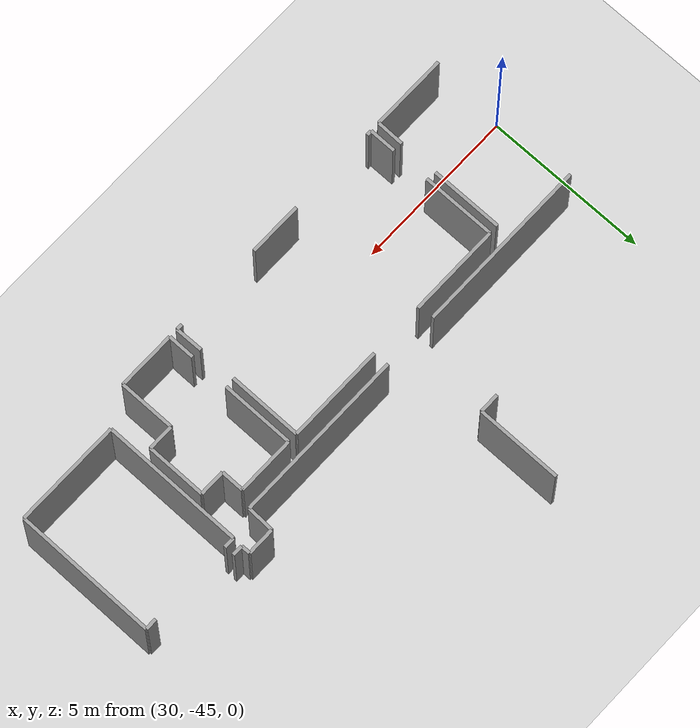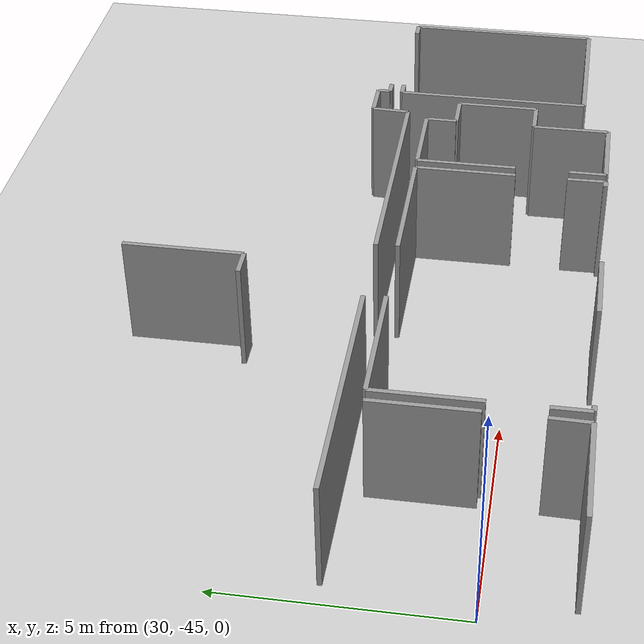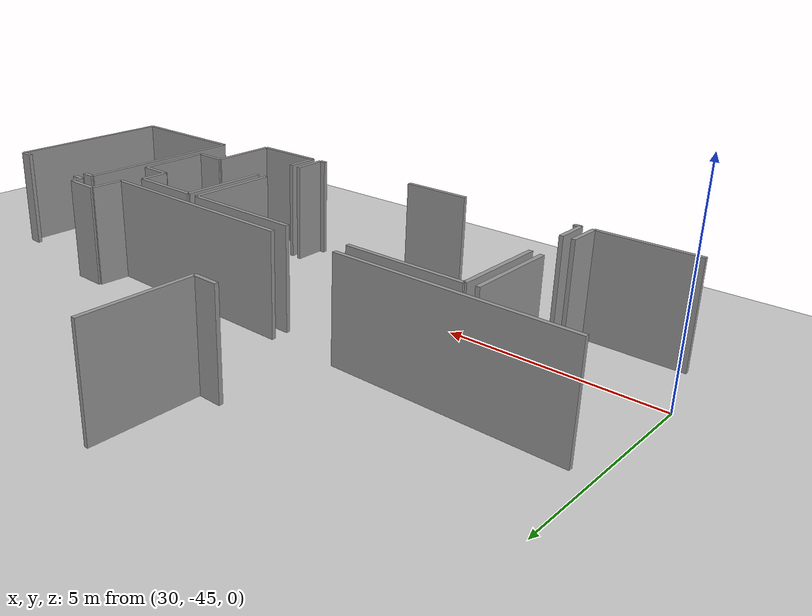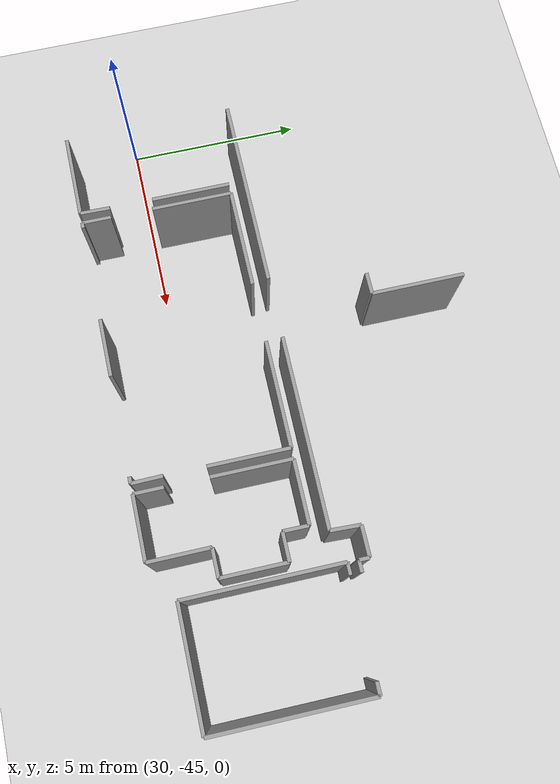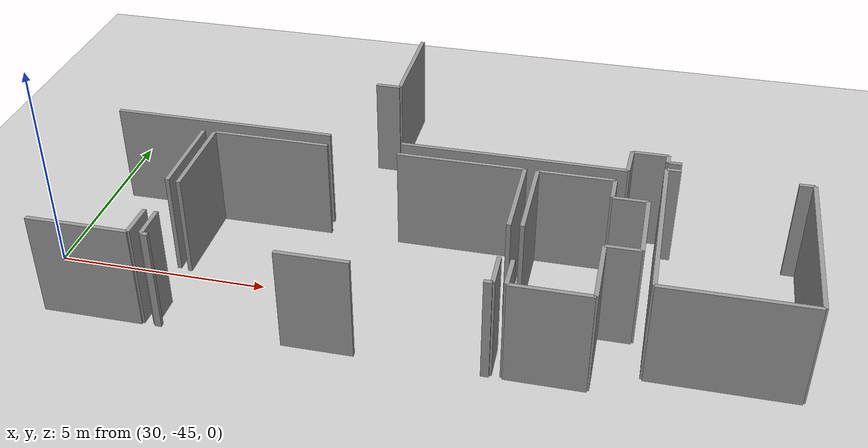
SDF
<sdf version="1.6">
 <world name="default">
  <model name="ground_plane">
   <static>1</static>
   <link name="link">
    <collision name="collision">
     <geometry><plane><normal>0 0 1</normal><size>100 100</size></plane></geometry>
     <surface><friction><ode><mu>100</mu><mu2>50</mu2></ode></friction></surface>
    </collision>
    <visual name="visual">
     <cast_shadows>0</cast_shadows>
     <geometry><plane><normal>0 0 1</normal><size>100 100</size></plane></geometry>
     <material>
      <script><uri>file://media/materials/scripts/gazebo.material</uri><name>Gazebo/Grey</name></script>
     </material>
    </visual>
   </link>
  </model>
  <model name="50025631">
   <static>1</static>
   <link name="Wall_301">
    <collision name="Wall_301_Collision">
     <geometry><box><size>5.28623954583 0.1 2.5</size></box></geometry>
     <pose>2.64311977291 0 1.25 0 0 0</pose>
    </collision>
    <visual name="Wall_301_Visual">
     <pose>2.64311977291 0 1.25 0 0 0</pose>
     <geometry><box><size>5.28623954583 0.1 2.5</size></box></geometry>
     <material>
      <script><uri>file://media/materials/scripts/gazebo.material</uri><name>Gazebo/Grey</name></script>
      <ambient>1 1 1 1</ambient>
     </material>
    </visual>
    <pose>98.7658836753 -90.636147149 0 0 0 3.14159265359</pose>
   </link>
   <link name="Wall_302">
    <collision name="Wall_302_Collision">
     <geometry><box><size>5.39711569602 0.1 2.5</size></box></geometry>
     <pose>2.69855784801 0 1.25 0 0 0</pose>
    </collision>
    <visual name="Wall_302_Visual">
     <pose>2.69855784801 0 1.25 0 0 0</pose>
     <geometry><box><size>5.39711569602 0.1 2.5</size></box></geometry>
     <material>
      <script><uri>file://media/materials/scripts/gazebo.material</uri><name>Gazebo/Grey</name></script>
      <ambient>1 1 1 1</ambient>
     </material>
    </visual>
    <pose>91.7538879681 -90.636147149 0 0 0 3.14159265359</pose>
   </link>
   <link name="Wall_307">
    <collision name="Wall_307_Collision">
     <geometry><box><size>0.601245927873 0.1 2.5</size></box></geometry>
     <pose>0.300622963937 0 1.25 0 0 0</pose>
    </collision>
    <visual name="Wall_307_Visual">
     <pose>0.300622963937 0 1.25 0 0 0</pose>
     <geometry><box><size>0.601245927873 0.1 2.5</size></box></geometry>
     <material>
      <script><uri>file://media/materials/scripts/gazebo.material</uri><name>Gazebo/Grey</name></script>
      <ambient>1 1 1 1</ambient>
     </material>
    </visual>
    <pose>92.1860890438 -87.9841369632 0 0 0 0.0</pose>
   </link>
   <link name="Wall_308">
    <collision name="Wall_308_Collision">
     <geometry><box><size>2.59714363732 0.1 2.5</size></box></geometry>
     <pose>1.29857181866 0 1.25 0 0 0</pose>
    </collision>
    <visual name="Wall_308_Visual">
     <pose>1.29857181866 0 1.25 0 0 0</pose>
     <geometry><box><size>2.59714363732 0.1 2.5</size></box></geometry>
     <material>
      <script><uri>file://media/materials/scripts/gazebo.material</uri><name>Gazebo/Grey</name></script>
      <ambient>1 1 1 1</ambient>
     </material>
    </visual>
    <pose>92.7873349717 -87.9841369632 0 0 0 1.57079632679</pose>
   </link>
   <link name="Wall_314">
    <collision name="Wall_314_Collision">
     <geometry><box><size>0.317387742661 0.1 2.5</size></box></geometry>
     <pose>0.15869387133 0 1.25 0 0 0</pose>
    </collision>
    <visual name="Wall_314_Visual">
     <pose>0.15869387133 0 1.25 0 0 0</pose>
     <geometry><box><size>0.317387742661 0.1 2.5</size></box></geometry>
     <material>
      <script><uri>file://media/materials/scripts/gazebo.material</uri><name>Gazebo/Grey</name></script>
      <ambient>1 1 1 1</ambient>
     </material>
    </visual>
    <pose>99.9523727877 -90.0900217815 0 0 0 3.14159265359</pose>
   </link>
   <link name="Wall_315">
    <collision name="Wall_315_Collision">
     <geometry><box><size>0.277126872543 0.1 2.5</size></box></geometry>
     <pose>0.138563436272 0 1.25 0 0 0</pose>
    </collision>
    <visual name="Wall_315_Visual">
     <pose>0.138563436272 0 1.25 0 0 0</pose>
     <geometry><box><size>0.277126872543 0.1 2.5</size></box></geometry>
     <material>
      <script><uri>file://media/materials/scripts/gazebo.material</uri><name>Gazebo/Grey</name></script>
      <ambient>1 1 1 1</ambient>
     </material>
    </visual>
    <pose>99.6349850451 -90.0900217815 0 0 0 1.57079632679</pose>
   </link>
   <link name="Wall_316">
    <collision name="Wall_316_Collision">
     <geometry><box><size>0.835063788713 0.1 2.5</size></box></geometry>
     <pose>0.417531894356 0 1.25 0 0 0</pose>
    </collision>
    <visual name="Wall_316_Visual">
     <pose>0.417531894356 0 1.25 0 0 0</pose>
     <geometry><box><size>0.835063788713 0.1 2.5</size></box></geometry>
     <material>
      <script><uri>file://media/materials/scripts/gazebo.material</uri><name>Gazebo/Grey</name></script>
      <ambient>1 1 1 1</ambient>
     </material>
    </visual>
    <pose>99.6349850451 -89.812894909 0 0 0 3.14159265359</pose>
   </link>
   <link name="Wall_317">
    <collision name="Wall_317_Collision">
     <geometry><box><size>0.823955585998 0.1 2.5</size></box></geometry>
     <pose>0.411977792999 0 1.25 0 0 0</pose>
    </collision>
    <visual name="Wall_317_Visual">
     <pose>0.411977792999 0 1.25 0 0 0</pose>
     <geometry><box><size>0.823955585998 0.1 2.5</size></box></geometry>
     <material>
      <script><uri>file://media/materials/scripts/gazebo.material</uri><name>Gazebo/Grey</name></script>
      <ambient>1 1 1 1</ambient>
     </material>
    </visual>
    <pose>98.7999212563 -89.812894909 0 0 0 -1.61211805578</pose>
   </link>
   <link name="Wall_318">
    <collision name="Wall_318_Collision">
     <geometry><box><size>3.25312910785 0.1 2.5</size></box></geometry>
     <pose>1.62656455392 0 1.25 0 0 0</pose>
    </collision>
    <visual name="Wall_318_Visual">
     <pose>1.62656455392 0 1.25 0 0 0</pose>
     <geometry><box><size>3.25312910785 0.1 2.5</size></box></geometry>
     <material>
      <script><uri>file://media/materials/scripts/gazebo.material</uri><name>Gazebo/Grey</name></script>
      <ambient>1 1 1 1</ambient>
     </material>
    </visual>
    <pose>102.876175598 -94.7177357388 0 0 0 3.14159265359</pose>
   </link>
   <link name="Wall_319">
    <collision name="Wall_319_Collision">
     <geometry><box><size>4.33344128835 0.1 2.5</size></box></geometry>
     <pose>2.16672064417 0 1.25 0 0 0</pose>
    </collision>
    <visual name="Wall_319_Visual">
     <pose>2.16672064417 0 1.25 0 0 0</pose>
     <geometry><box><size>4.33344128835 0.1 2.5</size></box></geometry>
     <material>
      <script><uri>file://media/materials/scripts/gazebo.material</uri><name>Gazebo/Grey</name></script>
      <ambient>1 1 1 1</ambient>
     </material>
    </visual>
    <pose>99.6230464905 -94.7177357388 0 0 0 1.57079632679</pose>
   </link>
   <link name="Wall_320">
    <collision name="Wall_320_Collision">
     <geometry><box><size>0.329199291307 0.1 2.5</size></box></geometry>
     <pose>0.164599645654 0 1.25 0 0 0</pose>
    </collision>
    <visual name="Wall_320_Visual">
     <pose>0.164599645654 0 1.25 0 0 0</pose>
     <geometry><box><size>0.329199291307 0.1 2.5</size></box></geometry>
     <material>
      <script><uri>file://media/materials/scripts/gazebo.material</uri><name>Gazebo/Grey</name></script>
      <ambient>1 1 1 1</ambient>
     </material>
    </visual>
    <pose>99.6230464905 -90.3842944505 0 0 0 0.0</pose>
   </link>
   <link name="Wall_321">
    <collision name="Wall_321_Collision">
     <geometry><box><size>0.34850418802 0.1 2.5</size></box></geometry>
     <pose>0.17425209401 0 1.25 0 0 0</pose>
    </collision>
    <visual name="Wall_321_Visual">
     <pose>0.17425209401 0 1.25 0 0 0</pose>
     <geometry><box><size>0.34850418802 0.1 2.5</size></box></geometry>
     <material>
      <script><uri>file://media/materials/scripts/gazebo.material</uri><name>Gazebo/Grey</name></script>
      <ambient>1 1 1 1</ambient>
     </material>
    </visual>
    <pose>102.534910747 -90.3842944505 0 0 0 0.0</pose>
   </link>
   <link name="Wall_322">
    <collision name="Wall_322_Collision">
     <geometry><box><size>4.33344733527 0.1 2.5</size></box></geometry>
     <pose>2.16672366763 0 1.25 0 0 0</pose>
    </collision>
    <visual name="Wall_322_Visual">
     <pose>2.16672366763 0 1.25 0 0 0</pose>
     <geometry><box><size>4.33344733527 0.1 2.5</size></box></geometry>
     <material>
      <script><uri>file://media/materials/scripts/gazebo.material</uri><name>Gazebo/Grey</name></script>
      <ambient>1 1 1 1</ambient>
     </material>
    </visual>
    <pose>102.883414935 -90.3842944505 0 0 0 -1.57246689968</pose>
   </link>
   <link name="Wall_352">
    <collision name="Wall_352_Collision">
     <geometry><box><size>0.182634483372 0.1 2.5</size></box></geometry>
     <pose>0.0913172416859 0 1.25 0 0 0</pose>
    </collision>
    <visual name="Wall_352_Visual">
     <pose>0.0913172416859 0 1.25 0 0 0</pose>
     <geometry><box><size>0.182634483372 0.1 2.5</size></box></geometry>
     <material>
      <script><uri>file://media/materials/scripts/gazebo.material</uri><name>Gazebo/Grey</name></script>
      <ambient>1 1 1 1</ambient>
     </material>
    </visual>
    <pose>96.493240111 -95.3205057375 0 0 0 3.14159265359</pose>
   </link>
   <link name="Wall_353">
    <collision name="Wall_353_Collision">
     <geometry><box><size>1.63761406717 0.1 2.5</size></box></geometry>
     <pose>0.818807033587 0 1.25 0 0 0</pose>
    </collision>
    <visual name="Wall_353_Visual">
     <pose>0.818807033587 0 1.25 0 0 0</pose>
     <geometry><box><size>1.63761406717 0.1 2.5</size></box></geometry>
     <material>
      <script><uri>file://media/materials/scripts/gazebo.material</uri><name>Gazebo/Grey</name></script>
      <ambient>1 1 1 1</ambient>
     </material>
    </visual>
    <pose>93.5555936573 -95.3205057375 0 0 0 3.14159265359</pose>
   </link>
   <link name="Wall_354">
    <collision name="Wall_354_Collision">
     <geometry><box><size>0.157614321185 0.1 2.5</size></box></geometry>
     <pose>0.0788071605926 0 1.25 0 0 0</pose>
    </collision>
    <visual name="Wall_354_Visual">
     <pose>0.0788071605926 0 1.25 0 0 0</pose>
     <geometry><box><size>0.157614321185 0.1 2.5</size></box></geometry>
     <material>
      <script><uri>file://media/materials/scripts/gazebo.material</uri><name>Gazebo/Grey</name></script>
      <ambient>1 1 1 1</ambient>
     </material>
    </visual>
    <pose>89.1629676198 -95.3205057375 0 0 0 3.14159265359</pose>
   </link>
   <link name="Wall_355">
    <collision name="Wall_355_Collision">
     <geometry><box><size>0.813345779911 0.1 2.5</size></box></geometry>
     <pose>0.406672889956 0 1.25 0 0 0</pose>
    </collision>
    <visual name="Wall_355_Visual">
     <pose>0.406672889956 0 1.25 0 0 0</pose>
     <geometry><box><size>0.813345779911 0.1 2.5</size></box></geometry>
     <material>
      <script><uri>file://media/materials/scripts/gazebo.material</uri><name>Gazebo/Grey</name></script>
      <ambient>1 1 1 1</ambient>
     </material>
    </visual>
    <pose>89.0053532987 -95.3205057375 0 0 0 1.57079632679</pose>
   </link>
   <link name="Wall_356">
    <collision name="Wall_356_Collision">
     <geometry><box><size>2.24381322512 0.1 2.5</size></box></geometry>
     <pose>1.12190661256 0 1.25 0 0 0</pose>
    </collision>
    <visual name="Wall_356_Visual">
     <pose>1.12190661256 0 1.25 0 0 0</pose>
     <geometry><box><size>2.24381322512 0.1 2.5</size></box></geometry>
     <material>
      <script><uri>file://media/materials/scripts/gazebo.material</uri><name>Gazebo/Grey</name></script>
      <ambient>1 1 1 1</ambient>
     </material>
    </visual>
    <pose>89.0053532987 -93.3380706534 0 0 0 1.57079632679</pose>
   </link>
   <link name="Wall_357">
    <collision name="Wall_357_Collision">
     <geometry><box><size>2.80949750116 0.1 2.5</size></box></geometry>
     <pose>1.40474875058 0 1.25 0 0 0</pose>
    </collision>
    <visual name="Wall_357_Visual">
     <pose>1.40474875058 0 1.25 0 0 0</pose>
     <geometry><box><size>2.80949750116 0.1 2.5</size></box></geometry>
     <material>
      <script><uri>file://media/materials/scripts/gazebo.material</uri><name>Gazebo/Grey</name></script>
      <ambient>1 1 1 1</ambient>
     </material>
    </visual>
    <pose>89.0053532987 -91.0942574283 0 0 0 0.0</pose>
   </link>
   <link name="Wall_358">
    <collision name="Wall_358_Collision">
     <geometry><box><size>2.98032043588 0.1 2.5</size></box></geometry>
     <pose>1.49016021794 0 1.25 0 0 0</pose>
    </collision>
    <visual name="Wall_358_Visual">
     <pose>1.49016021794 0 1.25 0 0 0</pose>
     <geometry><box><size>2.98032043588 0.1 2.5</size></box></geometry>
     <material>
      <script><uri>file://media/materials/scripts/gazebo.material</uri><name>Gazebo/Grey</name></script>
      <ambient>1 1 1 1</ambient>
     </material>
    </visual>
    <pose>93.4980599849 -91.0942574283 0 0 0 0.0</pose>
   </link>
   <link name="Wall_359">
    <collision name="Wall_359_Collision">
     <geometry><box><size>2.23670089476 0.1 2.5</size></box></geometry>
     <pose>1.11835044738 0 1.25 0 0 0</pose>
    </collision>
    <visual name="Wall_359_Visual">
     <pose>1.11835044738 0 1.25 0 0 0</pose>
     <geometry><box><size>2.23670089476 0.1 2.5</size></box></geometry>
     <material>
      <script><uri>file://media/materials/scripts/gazebo.material</uri><name>Gazebo/Grey</name></script>
      <ambient>1 1 1 1</ambient>
     </material>
    </visual>
    <pose>96.4783804208 -91.0942574283 0 0 0 -1.57079632679</pose>
   </link>
   <link name="Wall_360">
    <collision name="Wall_360_Collision">
     <geometry><box><size>0.847894599647 0.1 2.5</size></box></geometry>
     <pose>0.423947299824 0 1.25 0 0 0</pose>
    </collision>
    <visual name="Wall_360_Visual">
     <pose>0.423947299824 0 1.25 0 0 0</pose>
     <geometry><box><size>0.847894599647 0.1 2.5</size></box></geometry>
     <material>
      <script><uri>file://media/materials/scripts/gazebo.material</uri><name>Gazebo/Grey</name></script>
      <ambient>1 1 1 1</ambient>
     </material>
    </visual>
    <pose>96.4783804208 -94.4727413588 0 0 0 -1.55327003165</pose>
   </link>
   <link name="Wall_361">
    <collision name="Wall_361_Collision">
     <geometry><box><size>2.34262381488 0.1 2.5</size></box></geometry>
     <pose>1.17131190744 0 1.25 0 0 0</pose>
    </collision>
    <visual name="Wall_361_Visual">
     <pose>1.17131190744 0 1.25 0 0 0</pose>
     <geometry><box><size>2.34262381488 0.1 2.5</size></box></geometry>
     <material>
      <script><uri>file://media/materials/scripts/gazebo.material</uri><name>Gazebo/Grey</name></script>
      <ambient>1 1 1 1</ambient>
     </material>
    </visual>
    <pose>88.7053653642 -95.3252049558 0 0 0 3.14159265359</pose>
   </link>
   <link name="Wall_364">
    <collision name="Wall_364_Collision">
     <geometry><box><size>2.19631301874 0.1 2.5</size></box></geometry>
     <pose>1.09815650937 0 1.25 0 0 0</pose>
    </collision>
    <visual name="Wall_364_Visual">
     <pose>1.09815650937 0 1.25 0 0 0</pose>
     <geometry><box><size>2.19631301874 0.1 2.5</size></box></geometry>
     <material>
      <script><uri>file://media/materials/scripts/gazebo.material</uri><name>Gazebo/Grey</name></script>
      <ambient>1 1 1 1</ambient>
     </material>
    </visual>
    <pose>88.7235272078 -91.0926063516 0 0 0 -1.57079632679</pose>
   </link>
   <link name="Wall_365">
    <collision name="Wall_365_Collision">
     <geometry><box><size>0.834880339206 0.1 2.5</size></box></geometry>
     <pose>0.417440169603 0 1.25 0 0 0</pose>
    </collision>
    <visual name="Wall_365_Visual">
     <pose>0.417440169603 0 1.25 0 0 0</pose>
     <geometry><box><size>0.834880339206 0.1 2.5</size></box></geometry>
     <material>
      <script><uri>file://media/materials/scripts/gazebo.material</uri><name>Gazebo/Grey</name></script>
      <ambient>1 1 1 1</ambient>
     </material>
    </visual>
    <pose>88.7235272078 -94.4905221848 0 0 0 -1.5925518713</pose>
   </link>
   <link name="Wall_366">
    <collision name="Wall_366_Collision">
     <geometry><box><size>1.76804912588 0.1 2.5</size></box></geometry>
     <pose>0.884024562941 0 1.25 0 0 0</pose>
    </collision>
    <visual name="Wall_366_Visual">
     <pose>0.884024562941 0 1.25 0 0 0</pose>
     <geometry><box><size>1.76804912588 0.1 2.5</size></box></geometry>
     <material>
      <script><uri>file://media/materials/scripts/gazebo.material</uri><name>Gazebo/Grey</name></script>
      <ambient>1 1 1 1</ambient>
     </material>
    </visual>
    <pose>98.5368920386 -95.3188546608 0 0 0 3.14159265359</pose>
   </link>
   <link name="Wall_367">
    <collision name="Wall_367_Collision">
     <geometry><box><size>0.814488833006 0.1 2.5</size></box></geometry>
     <pose>0.407244416503 0 1.25 0 0 0</pose>
    </collision>
    <visual name="Wall_367_Visual">
     <pose>0.407244416503 0 1.25 0 0 0</pose>
     <geometry><box><size>0.814488833006 0.1 2.5</size></box></geometry>
     <material>
      <script><uri>file://media/materials/scripts/gazebo.material</uri><name>Gazebo/Grey</name></script>
      <ambient>1 1 1 1</ambient>
     </material>
    </visual>
    <pose>96.7688429128 -95.3188546608 0 0 0 1.57079632679</pose>
   </link>
   <link name="Wall_368">
    <collision name="Wall_368_Collision">
     <geometry><box><size>2.20748953789 0.1 2.5</size></box></geometry>
     <pose>1.10374476894 0 1.25 0 0 0</pose>
    </collision>
    <visual name="Wall_368_Visual">
     <pose>1.10374476894 0 1.25 0 0 0</pose>
     <geometry><box><size>2.20748953789 0.1 2.5</size></box></geometry>
     <material>
      <script><uri>file://media/materials/scripts/gazebo.material</uri><name>Gazebo/Grey</name></script>
      <ambient>1 1 1 1</ambient>
     </material>
    </visual>
    <pose>96.7688429128 -93.3089863024 0 0 0 1.57079632679</pose>
   </link>
   <link name="Wall_369">
    <collision name="Wall_369_Collision">
     <geometry><box><size>1.75763464213 0.1 2.5</size></box></geometry>
     <pose>0.878817321065 0 1.25 0 0 0</pose>
    </collision>
    <visual name="Wall_369_Visual">
     <pose>0.878817321065 0 1.25 0 0 0</pose>
     <geometry><box><size>1.75763464213 0.1 2.5</size></box></geometry>
     <material>
      <script><uri>file://media/materials/scripts/gazebo.material</uri><name>Gazebo/Grey</name></script>
      <ambient>1 1 1 1</ambient>
     </material>
    </visual>
    <pose>96.7688429128 -91.1014967645 0 0 0 0.0</pose>
   </link>
   <link name="Wall_370">
    <collision name="Wall_370_Collision">
     <geometry><box><size>0.697135381938 0.1 2.5</size></box></geometry>
     <pose>0.348567690969 0 1.25 0 0 0</pose>
    </collision>
    <visual name="Wall_370_Visual">
     <pose>0.348567690969 0 1.25 0 0 0</pose>
     <geometry><box><size>0.697135381938 0.1 2.5</size></box></geometry>
     <material>
      <script><uri>file://media/materials/scripts/gazebo.material</uri><name>Gazebo/Grey</name></script>
      <ambient>1 1 1 1</ambient>
     </material>
    </visual>
    <pose>98.5264775549 -91.1014967645 0 0 0 -1.57079632679</pose>
   </link>
   <link name="Wall_371">
    <collision name="Wall_371_Collision">
     <geometry><box><size>0.784261428943 0.1 2.5</size></box></geometry>
     <pose>0.392130714472 0 1.25 0 0 0</pose>
    </collision>
    <visual name="Wall_371_Visual">
     <pose>0.392130714472 0 1.25 0 0 0</pose>
     <geometry><box><size>0.784261428943 0.1 2.5</size></box></geometry>
     <material>
      <script><uri>file://media/materials/scripts/gazebo.material</uri><name>Gazebo/Grey</name></script>
      <ambient>1 1 1 1</ambient>
     </material>
    </visual>
    <pose>98.5264775549 -91.7986321465 0 0 0 0.0</pose>
   </link>
   <link name="Wall_372">
    <collision name="Wall_372_Collision">
     <geometry><box><size>1.81427927327 0.1 2.5</size></box></geometry>
     <pose>0.907139636636 0 1.25 0 0 0</pose>
    </collision>
    <visual name="Wall_372_Visual">
     <pose>0.907139636636 0 1.25 0 0 0</pose>
     <geometry><box><size>1.81427927327 0.1 2.5</size></box></geometry>
     <material>
      <script><uri>file://media/materials/scripts/gazebo.material</uri><name>Gazebo/Grey</name></script>
      <ambient>1 1 1 1</ambient>
     </material>
    </visual>
    <pose>99.3107389838 -91.7986321465 0 0 0 -1.57079632679</pose>
   </link>
   <link name="Wall_373">
    <collision name="Wall_373_Collision">
     <geometry><box><size>0.78070526376 0.1 2.5</size></box></geometry>
     <pose>0.39035263188 0 1.25 0 0 0</pose>
    </collision>
    <visual name="Wall_373_Visual">
     <pose>0.39035263188 0 1.25 0 0 0</pose>
     <geometry><box><size>0.78070526376 0.1 2.5</size></box></geometry>
     <material>
      <script><uri>file://media/materials/scripts/gazebo.material</uri><name>Gazebo/Grey</name></script>
      <ambient>1 1 1 1</ambient>
     </material>
    </visual>
    <pose>99.3107389838 -93.6129114197 0 0 0 3.14159265359</pose>
   </link>
   <link name="Wall_374">
    <collision name="Wall_374_Collision">
     <geometry><box><size>1.70595702709 0.1 2.5</size></box></geometry>
     <pose>0.852978513543 0 1.25 0 0 0</pose>
    </collision>
    <visual name="Wall_374_Visual">
     <pose>0.852978513543 0 1.25 0 0 0</pose>
     <geometry><box><size>1.70595702709 0.1 2.5</size></box></geometry>
     <material>
      <script><uri>file://media/materials/scripts/gazebo.material</uri><name>Gazebo/Grey</name></script>
      <ambient>1 1 1 1</ambient>
     </material>
    </visual>
    <pose>98.5300337201 -93.6129114197 0 0 0 -1.5667760983</pose>
   </link>
   <pose>-55.9 48.5496043766 0 0 0 0</pose>
  </model>
 </world>
</sdf>
